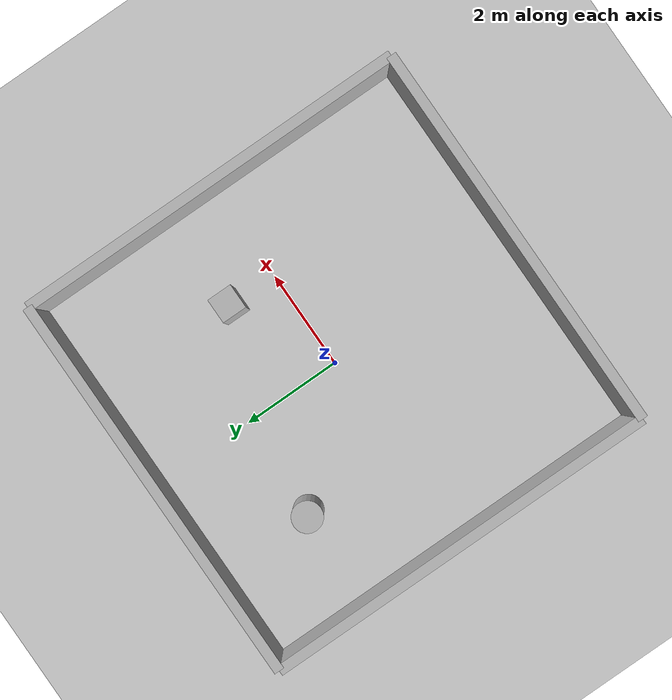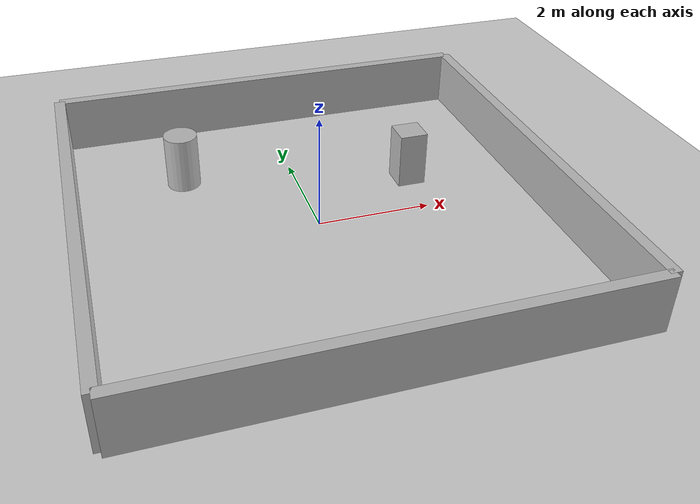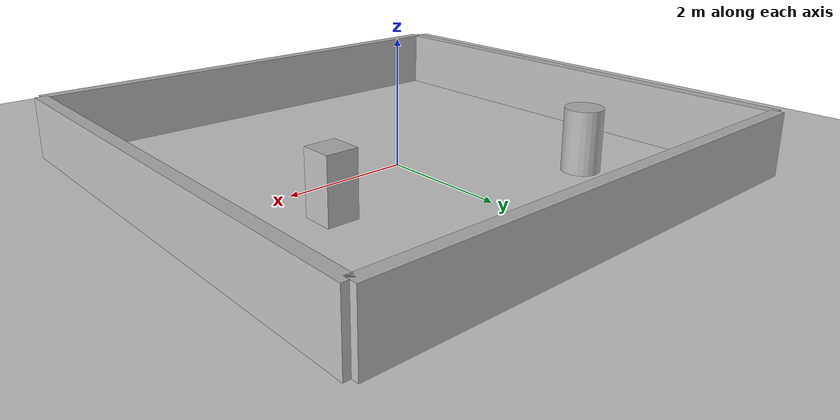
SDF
<?xml version="1.0"?>
<sdf version="1.6">
  <world name="obstacles">

    <!-- Luz -->
    <include>
      <uri>model://sun</uri>
    </include>

    <!-- Suelo -->
    <include>
      <uri>model://ground_plane</uri>
    </include>

    <!-- Paredes y obstáculos -->
    <model name="wall_north">
      <static>true</static>
      <pose>0 4 0.5 0 0 0</pose>
      <link name="link">
        <collision name="col"><geometry><box><size>8 0.2 1</size></box></geometry></collision>
        <visual name="vis"><geometry><box><size>8 0.2 1</size></box></geometry></visual>
      </link>
    </model>

    <model name="wall_south">
      <static>true</static>
      <pose>0 -4 0.5 0 0 0</pose>
      <link name="link">
        <collision name="col"><geometry><box><size>8 0.2 1</size></box></geometry></collision>
        <visual name="vis"><geometry><box><size>8 0.2 1</size></box></geometry></visual>
      </link>
    </model>

    <model name="wall_east">
      <static>true</static>
      <pose>4 0 0.5 0 0 0</pose>
      <link name="link">
        <collision name="col"><geometry><box><size>0.2 8 1</size></box></geometry></collision>
        <visual name="vis"><geometry><box><size>0.2 8 1</size></box></geometry></visual>
      </link>
    </model>

    <model name="wall_west">
      <static>true</static>
      <pose>-4 0 0.5 0 0 0</pose>
      <link name="link">
        <collision name="col"><geometry><box><size>0.2 8 1</size></box></geometry></collision>
        <visual name="vis"><geometry><box><size>0.2 8 1</size></box></geometry></visual>
      </link>
    </model>

    <model name="box_obstacle">
      <static>true</static>
      <pose>2 1 0.5 0 0 0</pose>
      <link name="link">
        <collision name="col"><geometry><box><size>0.5 0.5 1</size></box></geometry></collision>
        <visual name="vis"><geometry><box><size>0.5 0.5 1</size></box></geometry></visual>
      </link>
    </model>

    <model name="cylinder_obstacle">
      <static>true</static>
      <pose>-2 2 0.5 0 0 0</pose>
      <link name="link">
        <collision name="col"><geometry><cylinder><radius>0.3</radius><length>1</length></cylinder></geometry></collision>
        <visual name="vis"><geometry><cylinder><radius>0.3</radius><length>1</length></cylinder></geometry></visual>
      </link>
    </model>

  </world>
</sdf>
